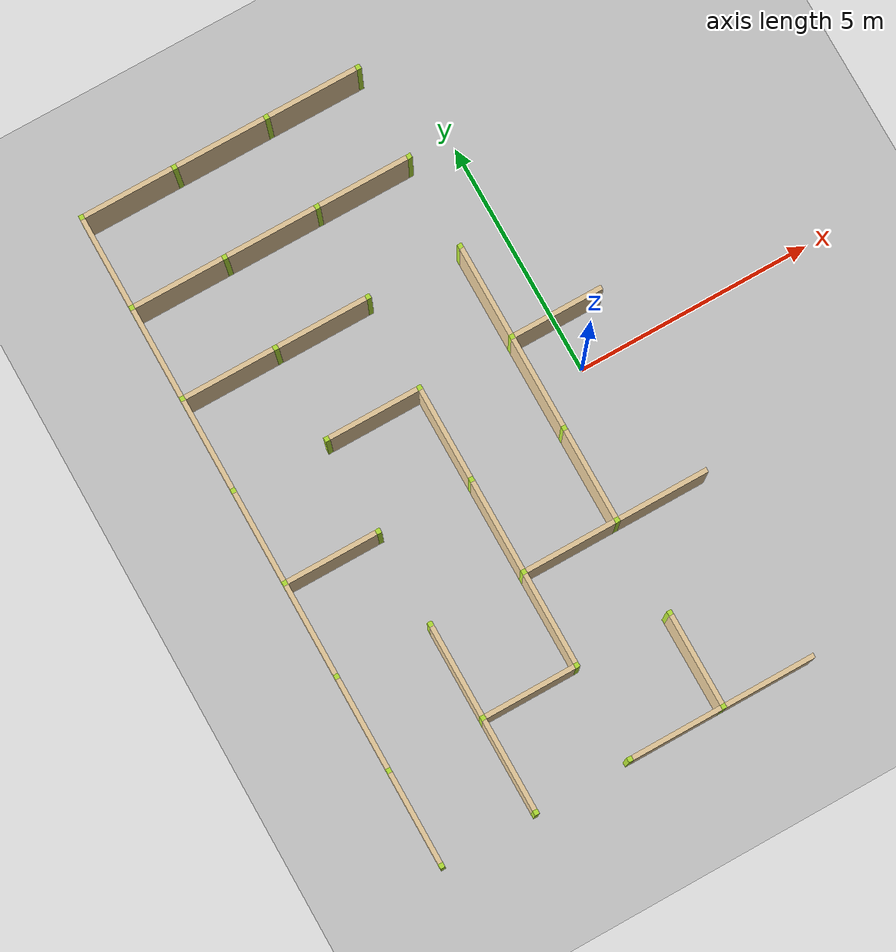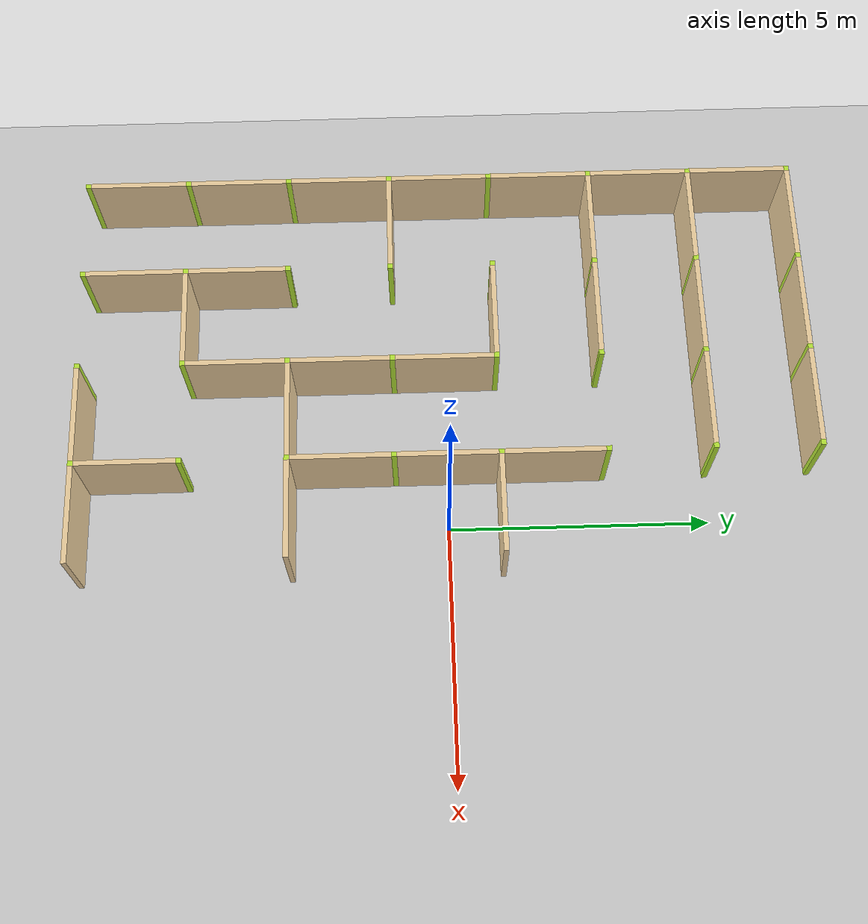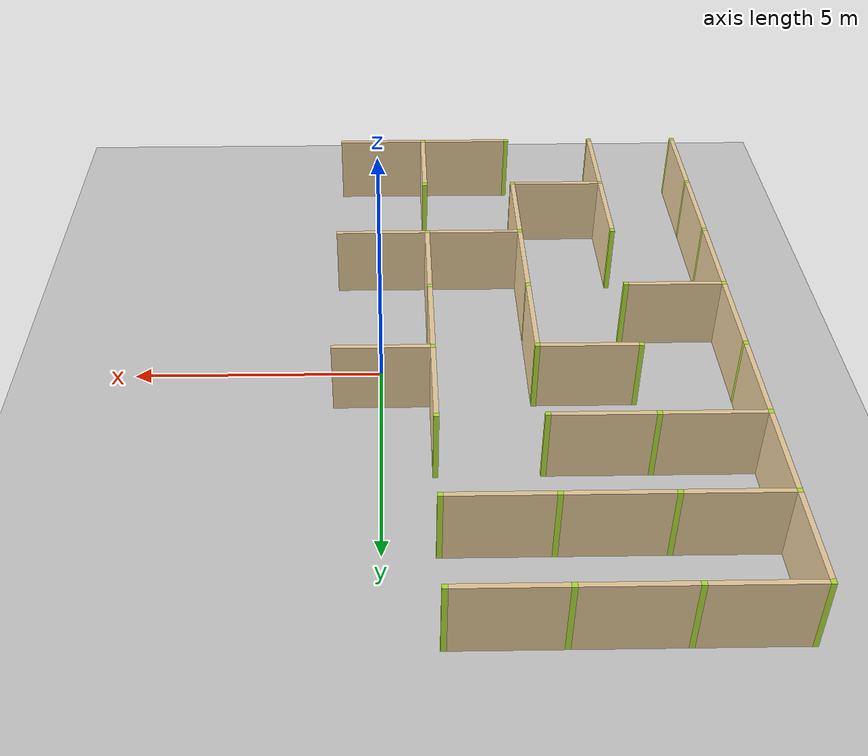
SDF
<sdf version="1.4">
 <world name="maze_world">
  <model name="ground">
   <static>true</static>
   <link name="ground_link">
    <collision name="collision1"><geometry><plane><normal>0 0 1</normal></plane></geometry></collision>
    <visual name="visual1"><geometry><plane><normal>0 0 1</normal><size>100 100</size></plane></geometry></visual>
   </link>
  </model>
  <model name="Untitled">
   <link name="Wall_0_0_h">
    <collision name="Wall_0_Collision">
     <geometry><box><size>1.9 0.1 1.5</size></box></geometry>
     <pose>0 0 0.75 0 -0 0</pose>
    </collision>
    <visual name="Wall_0_Visual">
     <pose>0 0 0.75 0 -0 0</pose>
     <geometry><box><size>1.9 0.1 1.5</size></box></geometry>
     <material>
      <script><uri>file://media/materials/scripts/gazebo.material</uri><name>Gazebo/Grey</name></script>
      <ambient>0.921569 0.807843 0.615686 1</ambient>
     </material>
     <meta><layer>0</layer></meta>
    </visual>
    <pose>-6.0 7 0 0 -0 0</pose>
    <sensor name="my_contact" type="contact">
     <contact><collision>box_collision</collision><topic>/rover_collision</topic></contact>
    </sensor>
   </link>
   <link name="Wall_0_0_v">
    <collision name="Wall_0_Collision">
     <geometry><box><size>1.9 0.1 1.5</size></box></geometry>
     <pose>0 0 0.75 0 -0 0</pose>
    </collision>
    <visual name="Wall_0_Visual">
     <pose>0 0 0.75 0 -0 0</pose>
     <geometry><box><size>1.9 0.1 1.5</size></box></geometry>
     <material>
      <script><uri>file://media/materials/scripts/gazebo.material</uri><name>Gazebo/Grey</name></script>
      <ambient>0.921569 0.807843 0.615686 1</ambient>
     </material>
     <meta><layer>0</layer></meta>
    </visual>
    <pose>-7 6.0 0 0 -0 1.5708</pose>
    <sensor name="my_contact" type="contact">
     <contact><collision>box_collision</collision><topic>/rover_collision</topic></contact>
    </sensor>
   </link>
   <link name="Joint_-7_7">
    <collision name="Wall_2_Collision">
     <geometry><box><size>0.1 0.1 1.5</size></box></geometry>
     <pose>0 0 0.75 0 -0 0</pose>
    </collision>
    <visual name="Wall_2_Visual">
     <pose>0 0 0.75 0 -0 0</pose>
     <geometry><box><size>0.1 0.1 1.5</size></box></geometry>
     <material>
      <script><uri>file://media/materials/scripts/gazebo.material</uri><name>Gazebo/Grey</name></script>
      <ambient>0.721569 0.907843 0.215686 1</ambient>
     </material>
     <meta><layer>0</layer></meta>
    </visual>
    <pose>-7 7 0 0 -0 0</pose>
    <sensor name="my_contact" type="contact">
     <contact><collision>box_collision</collision><topic>/rover_collision</topic></contact>
    </sensor>
   </link>
   <link name="Wall_1_0_h">
    <collision name="Wall_0_Collision">
     <geometry><box><size>1.9 0.1 1.5</size></box></geometry>
     <pose>0 0 0.75 0 -0 0</pose>
    </collision>
    <visual name="Wall_0_Visual">
     <pose>0 0 0.75 0 -0 0</pose>
     <geometry><box><size>1.9 0.1 1.5</size></box></geometry>
     <material>
      <script><uri>file://media/materials/scripts/gazebo.material</uri><name>Gazebo/Grey</name></script>
      <ambient>0.921569 0.807843 0.615686 1</ambient>
     </material>
     <meta><layer>0</layer></meta>
    </visual>
    <pose>-4.0 7 0 0 -0 0</pose>
    <sensor name="my_contact" type="contact">
     <contact><collision>box_collision</collision><topic>/rover_collision</topic></contact>
    </sensor>
   </link>
   <link name="Joint_-5_7">
    <collision name="Wall_2_Collision">
     <geometry><box><size>0.1 0.1 1.5</size></box></geometry>
     <pose>0 0 0.75 0 -0 0</pose>
    </collision>
    <visual name="Wall_2_Visual">
     <pose>0 0 0.75 0 -0 0</pose>
     <geometry><box><size>0.1 0.1 1.5</size></box></geometry>
     <material>
      <script><uri>file://media/materials/scripts/gazebo.material</uri><name>Gazebo/Grey</name></script>
      <ambient>0.721569 0.907843 0.215686 1</ambient>
     </material>
     <meta><layer>0</layer></meta>
    </visual>
    <pose>-5 7 0 0 -0 0</pose>
    <sensor name="my_contact" type="contact">
     <contact><collision>box_collision</collision><topic>/rover_collision</topic></contact>
    </sensor>
   </link>
   <link name="Wall_2_0_h">
    <collision name="Wall_0_Collision">
     <geometry><box><size>1.9 0.1 1.5</size></box></geometry>
     <pose>0 0 0.75 0 -0 0</pose>
    </collision>
    <visual name="Wall_0_Visual">
     <pose>0 0 0.75 0 -0 0</pose>
     <geometry><box><size>1.9 0.1 1.5</size></box></geometry>
     <material>
      <script><uri>file://media/materials/scripts/gazebo.material</uri><name>Gazebo/Grey</name></script>
      <ambient>0.921569 0.807843 0.615686 1</ambient>
     </material>
     <meta><layer>0</layer></meta>
    </visual>
    <pose>-2.0 7 0 0 -0 0</pose>
    <sensor name="my_contact" type="contact">
     <contact><collision>box_collision</collision><topic>/rover_collision</topic></contact>
    </sensor>
   </link>
   <link name="Joint_-3_7">
    <collision name="Wall_2_Collision">
     <geometry><box><size>0.1 0.1 1.5</size></box></geometry>
     <pose>0 0 0.75 0 -0 0</pose>
    </collision>
    <visual name="Wall_2_Visual">
     <pose>0 0 0.75 0 -0 0</pose>
     <geometry><box><size>0.1 0.1 1.5</size></box></geometry>
     <material>
      <script><uri>file://media/materials/scripts/gazebo.material</uri><name>Gazebo/Grey</name></script>
      <ambient>0.721569 0.907843 0.215686 1</ambient>
     </material>
     <meta><layer>0</layer></meta>
    </visual>
    <pose>-3 7 0 0 -0 0</pose>
    <sensor name="my_contact" type="contact">
     <contact><collision>box_collision</collision><topic>/rover_collision</topic></contact>
    </sensor>
   </link>
   <link name="Joint_-1_7">
    <collision name="Wall_2_Collision">
     <geometry><box><size>0.1 0.1 1.5</size></box></geometry>
     <pose>0 0 0.75 0 -0 0</pose>
    </collision>
    <visual name="Wall_2_Visual">
     <pose>0 0 0.75 0 -0 0</pose>
     <geometry><box><size>0.1 0.1 1.5</size></box></geometry>
     <material>
      <script><uri>file://media/materials/scripts/gazebo.material</uri><name>Gazebo/Grey</name></script>
      <ambient>0.721569 0.907843 0.215686 1</ambient>
     </material>
     <meta><layer>0</layer></meta>
    </visual>
    <pose>-1 7 0 0 -0 0</pose>
    <sensor name="my_contact" type="contact">
     <contact><collision>box_collision</collision><topic>/rover_collision</topic></contact>
    </sensor>
   </link>
   <link name="Wall_0_1_h">
    <collision name="Wall_0_Collision">
     <geometry><box><size>1.9 0.1 1.5</size></box></geometry>
     <pose>0 0 0.75 0 -0 0</pose>
    </collision>
    <visual name="Wall_0_Visual">
     <pose>0 0 0.75 0 -0 0</pose>
     <geometry><box><size>1.9 0.1 1.5</size></box></geometry>
     <material>
      <script><uri>file://media/materials/scripts/gazebo.material</uri><name>Gazebo/Grey</name></script>
      <ambient>0.921569 0.807843 0.615686 1</ambient>
     </material>
     <meta><layer>0</layer></meta>
    </visual>
    <pose>-6.0 5 0 0 -0 0</pose>
    <sensor name="my_contact" type="contact">
     <contact><collision>box_collision</collision><topic>/rover_collision</topic></contact>
    </sensor>
   </link>
   <link name="Wall_0_1_v">
    <collision name="Wall_0_Collision">
     <geometry><box><size>1.9 0.1 1.5</size></box></geometry>
     <pose>0 0 0.75 0 -0 0</pose>
    </collision>
    <visual name="Wall_0_Visual">
     <pose>0 0 0.75 0 -0 0</pose>
     <geometry><box><size>1.9 0.1 1.5</size></box></geometry>
     <material>
      <script><uri>file://media/materials/scripts/gazebo.material</uri><name>Gazebo/Grey</name></script>
      <ambient>0.921569 0.807843 0.615686 1</ambient>
     </material>
     <meta><layer>0</layer></meta>
    </visual>
    <pose>-7 4.0 0 0 -0 1.5708</pose>
    <sensor name="my_contact" type="contact">
     <contact><collision>box_collision</collision><topic>/rover_collision</topic></contact>
    </sensor>
   </link>
   <link name="Joint_-7_5">
    <collision name="Wall_2_Collision">
     <geometry><box><size>0.1 0.1 1.5</size></box></geometry>
     <pose>0 0 0.75 0 -0 0</pose>
    </collision>
    <visual name="Wall_2_Visual">
     <pose>0 0 0.75 0 -0 0</pose>
     <geometry><box><size>0.1 0.1 1.5</size></box></geometry>
     <material>
      <script><uri>file://media/materials/scripts/gazebo.material</uri><name>Gazebo/Grey</name></script>
      <ambient>0.721569 0.907843 0.215686 1</ambient>
     </material>
     <meta><layer>0</layer></meta>
    </visual>
    <pose>-7 5 0 0 -0 0</pose>
    <sensor name="my_contact" type="contact">
     <contact><collision>box_collision</collision><topic>/rover_collision</topic></contact>
    </sensor>
   </link>
   <link name="Wall_1_1_h">
    <collision name="Wall_0_Collision">
     <geometry><box><size>1.9 0.1 1.5</size></box></geometry>
     <pose>0 0 0.75 0 -0 0</pose>
    </collision>
    <visual name="Wall_0_Visual">
     <pose>0 0 0.75 0 -0 0</pose>
     <geometry><box><size>1.9 0.1 1.5</size></box></geometry>
     <material>
      <script><uri>file://media/materials/scripts/gazebo.material</uri><name>Gazebo/Grey</name></script>
      <ambient>0.921569 0.807843 0.615686 1</ambient>
     </material>
     <meta><layer>0</layer></meta>
    </visual>
    <pose>-4.0 5 0 0 -0 0</pose>
    <sensor name="my_contact" type="contact">
     <contact><collision>box_collision</collision><topic>/rover_collision</topic></contact>
    </sensor>
   </link>
   <link name="Joint_-5_5">
    <collision name="Wall_2_Collision">
     <geometry><box><size>0.1 0.1 1.5</size></box></geometry>
     <pose>0 0 0.75 0 -0 0</pose>
    </collision>
    <visual name="Wall_2_Visual">
     <pose>0 0 0.75 0 -0 0</pose>
     <geometry><box><size>0.1 0.1 1.5</size></box></geometry>
     <material>
      <script><uri>file://media/materials/scripts/gazebo.material</uri><name>Gazebo/Grey</name></script>
      <ambient>0.721569 0.907843 0.215686 1</ambient>
     </material>
     <meta><layer>0</layer></meta>
    </visual>
    <pose>-5 5 0 0 -0 0</pose>
    <sensor name="my_contact" type="contact">
     <contact><collision>box_collision</collision><topic>/rover_collision</topic></contact>
    </sensor>
   </link>
   <link name="Wall_2_1_h">
    <collision name="Wall_0_Collision">
     <geometry><box><size>1.9 0.1 1.5</size></box></geometry>
     <pose>0 0 0.75 0 -0 0</pose>
    </collision>
    <visual name="Wall_0_Visual">
     <pose>0 0 0.75 0 -0 0</pose>
     <geometry><box><size>1.9 0.1 1.5</size></box></geometry>
     <material>
      <script><uri>file://media/materials/scripts/gazebo.material</uri><name>Gazebo/Grey</name></script>
      <ambient>0.921569 0.807843 0.615686 1</ambient>
     </material>
     <meta><layer>0</layer></meta>
    </visual>
    <pose>-2.0 5 0 0 -0 0</pose>
    <sensor name="my_contact" type="contact">
     <contact><collision>box_collision</collision><topic>/rover_collision</topic></contact>
    </sensor>
   </link>
   <link name="Joint_-3_5">
    <collision name="Wall_2_Collision">
     <geometry><box><size>0.1 0.1 1.5</size></box></geometry>
     <pose>0 0 0.75 0 -0 0</pose>
    </collision>
    <visual name="Wall_2_Visual">
     <pose>0 0 0.75 0 -0 0</pose>
     <geometry><box><size>0.1 0.1 1.5</size></box></geometry>
     <material>
      <script><uri>file://media/materials/scripts/gazebo.material</uri><name>Gazebo/Grey</name></script>
      <ambient>0.721569 0.907843 0.215686 1</ambient>
     </material>
     <meta><layer>0</layer></meta>
    </visual>
    <pose>-3 5 0 0 -0 0</pose>
    <sensor name="my_contact" type="contact">
     <contact><collision>box_collision</collision><topic>/rover_collision</topic></contact>
    </sensor>
   </link>
   <link name="Joint_-1_5">
    <collision name="Wall_2_Collision">
     <geometry><box><size>0.1 0.1 1.5</size></box></geometry>
     <pose>0 0 0.75 0 -0 0</pose>
    </collision>
    <visual name="Wall_2_Visual">
     <pose>0 0 0.75 0 -0 0</pose>
     <geometry><box><size>0.1 0.1 1.5</size></box></geometry>
     <material>
      <script><uri>file://media/materials/scripts/gazebo.material</uri><name>Gazebo/Grey</name></script>
      <ambient>0.721569 0.907843 0.215686 1</ambient>
     </material>
     <meta><layer>0</layer></meta>
    </visual>
    <pose>-1 5 0 0 -0 0</pose>
    <sensor name="my_contact" type="contact">
     <contact><collision>box_collision</collision><topic>/rover_collision</topic></contact>
    </sensor>
   </link>
   <link name="Wall_0_2_h">
    <collision name="Wall_0_Collision">
     <geometry><box><size>1.9 0.1 1.5</size></box></geometry>
     <pose>0 0 0.75 0 -0 0</pose>
    </collision>
    <visual name="Wall_0_Visual">
     <pose>0 0 0.75 0 -0 0</pose>
     <geometry><box><size>1.9 0.1 1.5</size></box></geometry>
     <material>
      <script><uri>file://media/materials/scripts/gazebo.material</uri><name>Gazebo/Grey</name></script>
      <ambient>0.921569 0.807843 0.615686 1</ambient>
     </material>
     <meta><layer>0</layer></meta>
    </visual>
    <pose>-6.0 3 0 0 -0 0</pose>
    <sensor name="my_contact" type="contact">
     <contact><collision>box_collision</collision><topic>/rover_collision</topic></contact>
    </sensor>
   </link>
   <link name="Wall_0_2_v">
    <collision name="Wall_0_Collision">
     <geometry><box><size>1.9 0.1 1.5</size></box></geometry>
     <pose>0 0 0.75 0 -0 0</pose>
    </collision>
    <visual name="Wall_0_Visual">
     <pose>0 0 0.75 0 -0 0</pose>
     <geometry><box><size>1.9 0.1 1.5</size></box></geometry>
     <material>
      <script><uri>file://media/materials/scripts/gazebo.material</uri><name>Gazebo/Grey</name></script>
      <ambient>0.921569 0.807843 0.615686 1</ambient>
     </material>
     <meta><layer>0</layer></meta>
    </visual>
    <pose>-7 2.0 0 0 -0 1.5708</pose>
    <sensor name="my_contact" type="contact">
     <contact><collision>box_collision</collision><topic>/rover_collision</topic></contact>
    </sensor>
   </link>
   <link name="Joint_-7_3">
    <collision name="Wall_2_Collision">
     <geometry><box><size>0.1 0.1 1.5</size></box></geometry>
     <pose>0 0 0.75 0 -0 0</pose>
    </collision>
    <visual name="Wall_2_Visual">
     <pose>0 0 0.75 0 -0 0</pose>
     <geometry><box><size>0.1 0.1 1.5</size></box></geometry>
     <material>
      <script><uri>file://media/materials/scripts/gazebo.material</uri><name>Gazebo/Grey</name></script>
      <ambient>0.721569 0.907843 0.215686 1</ambient>
     </material>
     <meta><layer>0</layer></meta>
    </visual>
    <pose>-7 3 0 0 -0 0</pose>
    <sensor name="my_contact" type="contact">
     <contact><collision>box_collision</collision><topic>/rover_collision</topic></contact>
    </sensor>
   </link>
   <link name="Wall_1_2_h">
    <collision name="Wall_0_Collision">
     <geometry><box><size>1.9 0.1 1.5</size></box></geometry>
     <pose>0 0 0.75 0 -0 0</pose>
    </collision>
    <visual name="Wall_0_Visual">
     <pose>0 0 0.75 0 -0 0</pose>
     <geometry><box><size>1.9 0.1 1.5</size></box></geometry>
     <material>
      <script><uri>file://media/materials/scripts/gazebo.material</uri><name>Gazebo/Grey</name></script>
      <ambient>0.921569 0.807843 0.615686 1</ambient>
     </material>
     <meta><layer>0</layer></meta>
    </visual>
    <pose>-4.0 3 0 0 -0 0</pose>
    <sensor name="my_contact" type="contact">
     <contact><collision>box_collision</collision><topic>/rover_collision</topic></contact>
    </sensor>
   </link>
   <link name="Joint_-5_3">
    <collision name="Wall_2_Collision">
     <geometry><box><size>0.1 0.1 1.5</size></box></geometry>
     <pose>0 0 0.75 0 -0 0</pose>
    </collision>
    <visual name="Wall_2_Visual">
     <pose>0 0 0.75 0 -0 0</pose>
     <geometry><box><size>0.1 0.1 1.5</size></box></geometry>
     <material>
      <script><uri>file://media/materials/scripts/gazebo.material</uri><name>Gazebo/Grey</name></script>
      <ambient>0.721569 0.907843 0.215686 1</ambient>
     </material>
     <meta><layer>0</layer></meta>
    </visual>
    <pose>-5 3 0 0 -0 0</pose>
    <sensor name="my_contact" type="contact">
     <contact><collision>box_collision</collision><topic>/rover_collision</topic></contact>
    </sensor>
   </link>
   <link name="Joint_-3_3">
    <collision name="Wall_2_Collision">
     <geometry><box><size>0.1 0.1 1.5</size></box></geometry>
     <pose>0 0 0.75 0 -0 0</pose>
    </collision>
    <visual name="Wall_2_Visual">
     <pose>0 0 0.75 0 -0 0</pose>
     <geometry><box><size>0.1 0.1 1.5</size></box></geometry>
     <material>
      <script><uri>file://media/materials/scripts/gazebo.material</uri><name>Gazebo/Grey</name></script>
      <ambient>0.721569 0.907843 0.215686 1</ambient>
     </material>
     <meta><layer>0</layer></meta>
    </visual>
    <pose>-3 3 0 0 -0 0</pose>
    <sensor name="my_contact" type="contact">
     <contact><collision>box_collision</collision><topic>/rover_collision</topic></contact>
    </sensor>
   </link>
   <link name="Wall_3_2_v">
    <collision name="Wall_0_Collision">
     <geometry><box><size>1.9 0.1 1.5</size></box></geometry>
     <pose>0 0 0.75 0 -0 0</pose>
    </collision>
    <visual name="Wall_0_Visual">
     <pose>0 0 0.75 0 -0 0</pose>
     <geometry><box><size>1.9 0.1 1.5</size></box></geometry>
     <material>
      <script><uri>file://media/materials/scripts/gazebo.material</uri><name>Gazebo/Grey</name></script>
      <ambient>0.921569 0.807843 0.615686 1</ambient>
     </material>
     <meta><layer>0</layer></meta>
    </visual>
    <pose>-1 2.0 0 0 -0 1.5708</pose>
    <sensor name="my_contact" type="contact">
     <contact><collision>box_collision</collision><topic>/rover_collision</topic></contact>
    </sensor>
   </link>
   <link name="Joint_-1_3">
    <collision name="Wall_2_Collision">
     <geometry><box><size>0.1 0.1 1.5</size></box></geometry>
     <pose>0 0 0.75 0 -0 0</pose>
    </collision>
    <visual name="Wall_2_Visual">
     <pose>0 0 0.75 0 -0 0</pose>
     <geometry><box><size>0.1 0.1 1.5</size></box></geometry>
     <material>
      <script><uri>file://media/materials/scripts/gazebo.material</uri><name>Gazebo/Grey</name></script>
      <ambient>0.721569 0.907843 0.215686 1</ambient>
     </material>
     <meta><layer>0</layer></meta>
    </visual>
    <pose>-1 3 0 0 -0 0</pose>
    <sensor name="my_contact" type="contact">
     <contact><collision>box_collision</collision><topic>/rover_collision</topic></contact>
    </sensor>
   </link>
   <link name="Wall_0_3_v">
    <collision name="Wall_0_Collision">
     <geometry><box><size>1.9 0.1 1.5</size></box></geometry>
     <pose>0 0 0.75 0 -0 0</pose>
    </collision>
    <visual name="Wall_0_Visual">
     <pose>0 0 0.75 0 -0 0</pose>
     <geometry><box><size>1.9 0.1 1.5</size></box></geometry>
     <material>
      <script><uri>file://media/materials/scripts/gazebo.material</uri><name>Gazebo/Grey</name></script>
      <ambient>0.921569 0.807843 0.615686 1</ambient>
     </material>
     <meta><layer>0</layer></meta>
    </visual>
    <pose>-7 -0.0 0 0 -0 1.5708</pose>
    <sensor name="my_contact" type="contact">
     <contact><collision>box_collision</collision><topic>/rover_collision</topic></contact>
    </sensor>
   </link>
   <link name="Joint_-7_1">
    <collision name="Wall_2_Collision">
     <geometry><box><size>0.1 0.1 1.5</size></box></geometry>
     <pose>0 0 0.75 0 -0 0</pose>
    </collision>
    <visual name="Wall_2_Visual">
     <pose>0 0 0.75 0 -0 0</pose>
     <geometry><box><size>0.1 0.1 1.5</size></box></geometry>
     <material>
      <script><uri>file://media/materials/scripts/gazebo.material</uri><name>Gazebo/Grey</name></script>
      <ambient>0.721569 0.907843 0.215686 1</ambient>
     </material>
     <meta><layer>0</layer></meta>
    </visual>
    <pose>-7 1 0 0 -0 0</pose>
    <sensor name="my_contact" type="contact">
     <contact><collision>box_collision</collision><topic>/rover_collision</topic></contact>
    </sensor>
   </link>
   <link name="Wall_1_3_h">
    <collision name="Wall_0_Collision">
     <geometry><box><size>1.9 0.1 1.5</size></box></geometry>
     <pose>0 0 0.75 0 -0 0</pose>
    </collision>
    <visual name="Wall_0_Visual">
     <pose>0 0 0.75 0 -0 0</pose>
     <geometry><box><size>1.9 0.1 1.5</size></box></geometry>
     <material>
      <script><uri>file://media/materials/scripts/gazebo.material</uri><name>Gazebo/Grey</name></script>
      <ambient>0.921569 0.807843 0.615686 1</ambient>
     </material>
     <meta><layer>0</layer></meta>
    </visual>
    <pose>-4.0 1 0 0 -0 0</pose>
    <sensor name="my_contact" type="contact">
     <contact><collision>box_collision</collision><topic>/rover_collision</topic></contact>
    </sensor>
   </link>
   <link name="Joint_-5_1">
    <collision name="Wall_2_Collision">
     <geometry><box><size>0.1 0.1 1.5</size></box></geometry>
     <pose>0 0 0.75 0 -0 0</pose>
    </collision>
    <visual name="Wall_2_Visual">
     <pose>0 0 0.75 0 -0 0</pose>
     <geometry><box><size>0.1 0.1 1.5</size></box></geometry>
     <material>
      <script><uri>file://media/materials/scripts/gazebo.material</uri><name>Gazebo/Grey</name></script>
      <ambient>0.721569 0.907843 0.215686 1</ambient>
     </material>
     <meta><layer>0</layer></meta>
    </visual>
    <pose>-5 1 0 0 -0 0</pose>
    <sensor name="my_contact" type="contact">
     <contact><collision>box_collision</collision><topic>/rover_collision</topic></contact>
    </sensor>
   </link>
   <link name="Wall_2_3_v">
    <collision name="Wall_0_Collision">
     <geometry><box><size>1.9 0.1 1.5</size></box></geometry>
     <pose>0 0 0.75 0 -0 0</pose>
    </collision>
    <visual name="Wall_0_Visual">
     <pose>0 0 0.75 0 -0 0</pose>
     <geometry><box><size>1.9 0.1 1.5</size></box></geometry>
     <material>
      <script><uri>file://media/materials/scripts/gazebo.material</uri><name>Gazebo/Grey</name></script>
      <ambient>0.921569 0.807843 0.615686 1</ambient>
     </material>
     <meta><layer>0</layer></meta>
    </visual>
    <pose>-3 -0.0 0 0 -0 1.5708</pose>
    <sensor name="my_contact" type="contact">
     <contact><collision>box_collision</collision><topic>/rover_collision</topic></contact>
    </sensor>
   </link>
   <link name="Joint_-3_1">
    <collision name="Wall_2_Collision">
     <geometry><box><size>0.1 0.1 1.5</size></box></geometry>
     <pose>0 0 0.75 0 -0 0</pose>
    </collision>
    <visual name="Wall_2_Visual">
     <pose>0 0 0.75 0 -0 0</pose>
     <geometry><box><size>0.1 0.1 1.5</size></box></geometry>
     <material>
      <script><uri>file://media/materials/scripts/gazebo.material</uri><name>Gazebo/Grey</name></script>
      <ambient>0.721569 0.907843 0.215686 1</ambient>
     </material>
     <meta><layer>0</layer></meta>
    </visual>
    <pose>-3 1 0 0 -0 0</pose>
    <sensor name="my_contact" type="contact">
     <contact><collision>box_collision</collision><topic>/rover_collision</topic></contact>
    </sensor>
   </link>
   <link name="Wall_3_3_h">
    <collision name="Wall_0_Collision">
     <geometry><box><size>1.9 0.1 1.5</size></box></geometry>
     <pose>0 0 0.75 0 -0 0</pose>
    </collision>
    <visual name="Wall_0_Visual">
     <pose>0 0 0.75 0 -0 0</pose>
     <geometry><box><size>1.9 0.1 1.5</size></box></geometry>
     <material>
      <script><uri>file://media/materials/scripts/gazebo.material</uri><name>Gazebo/Grey</name></script>
      <ambient>0.921569 0.807843 0.615686 1</ambient>
     </material>
     <meta><layer>0</layer></meta>
    </visual>
    <pose>0.0 1 0 0 -0 0</pose>
    <sensor name="my_contact" type="contact">
     <contact><collision>box_collision</collision><topic>/rover_collision</topic></contact>
    </sensor>
   </link>
   <link name="Wall_3_3_v">
    <collision name="Wall_0_Collision">
     <geometry><box><size>1.9 0.1 1.5</size></box></geometry>
     <pose>0 0 0.75 0 -0 0</pose>
    </collision>
    <visual name="Wall_0_Visual">
     <pose>0 0 0.75 0 -0 0</pose>
     <geometry><box><size>1.9 0.1 1.5</size></box></geometry>
     <material>
      <script><uri>file://media/materials/scripts/gazebo.material</uri><name>Gazebo/Grey</name></script>
      <ambient>0.921569 0.807843 0.615686 1</ambient>
     </material>
     <meta><layer>0</layer></meta>
    </visual>
    <pose>-1 -0.0 0 0 -0 1.5708</pose>
    <sensor name="my_contact" type="contact">
     <contact><collision>box_collision</collision><topic>/rover_collision</topic></contact>
    </sensor>
   </link>
   <link name="Joint_-1_1">
    <collision name="Wall_2_Collision">
     <geometry><box><size>0.1 0.1 1.5</size></box></geometry>
     <pose>0 0 0.75 0 -0 0</pose>
    </collision>
    <visual name="Wall_2_Visual">
     <pose>0 0 0.75 0 -0 0</pose>
     <geometry><box><size>0.1 0.1 1.5</size></box></geometry>
     <material>
      <script><uri>file://media/materials/scripts/gazebo.material</uri><name>Gazebo/Grey</name></script>
      <ambient>0.721569 0.907843 0.215686 1</ambient>
     </material>
     <meta><layer>0</layer></meta>
    </visual>
    <pose>-1 1 0 0 -0 0</pose>
    <sensor name="my_contact" type="contact">
     <contact><collision>box_collision</collision><topic>/rover_collision</topic></contact>
    </sensor>
   </link>
   <link name="Wall_0_4_h">
    <collision name="Wall_0_Collision">
     <geometry><box><size>1.9 0.1 1.5</size></box></geometry>
     <pose>0 0 0.75 0 -0 0</pose>
    </collision>
    <visual name="Wall_0_Visual">
     <pose>0 0 0.75 0 -0 0</pose>
     <geometry><box><size>1.9 0.1 1.5</size></box></geometry>
     <material>
      <script><uri>file://media/materials/scripts/gazebo.material</uri><name>Gazebo/Grey</name></script>
      <ambient>0.921569 0.807843 0.615686 1</ambient>
     </material>
     <meta><layer>0</layer></meta>
    </visual>
    <pose>-6.0 -1 0 0 -0 0</pose>
    <sensor name="my_contact" type="contact">
     <contact><collision>box_collision</collision><topic>/rover_collision</topic></contact>
    </sensor>
   </link>
   <link name="Wall_0_4_v">
    <collision name="Wall_0_Collision">
     <geometry><box><size>1.9 0.1 1.5</size></box></geometry>
     <pose>0 0 0.75 0 -0 0</pose>
    </collision>
    <visual name="Wall_0_Visual">
     <pose>0 0 0.75 0 -0 0</pose>
     <geometry><box><size>1.9 0.1 1.5</size></box></geometry>
     <material>
      <script><uri>file://media/materials/scripts/gazebo.material</uri><name>Gazebo/Grey</name></script>
      <ambient>0.921569 0.807843 0.615686 1</ambient>
     </material>
     <meta><layer>0</layer></meta>
    </visual>
    <pose>-7 -2.0 0 0 -0 1.5708</pose>
    <sensor name="my_contact" type="contact">
     <contact><collision>box_collision</collision><topic>/rover_collision</topic></contact>
    </sensor>
   </link>
   <link name="Joint_-7_-1">
    <collision name="Wall_2_Collision">
     <geometry><box><size>0.1 0.1 1.5</size></box></geometry>
     <pose>0 0 0.75 0 -0 0</pose>
    </collision>
    <visual name="Wall_2_Visual">
     <pose>0 0 0.75 0 -0 0</pose>
     <geometry><box><size>0.1 0.1 1.5</size></box></geometry>
     <material>
      <script><uri>file://media/materials/scripts/gazebo.material</uri><name>Gazebo/Grey</name></script>
      <ambient>0.721569 0.907843 0.215686 1</ambient>
     </material>
     <meta><layer>0</layer></meta>
    </visual>
    <pose>-7 -1 0 0 -0 0</pose>
    <sensor name="my_contact" type="contact">
     <contact><collision>box_collision</collision><topic>/rover_collision</topic></contact>
    </sensor>
   </link>
   <link name="Joint_-5_-1">
    <collision name="Wall_2_Collision">
     <geometry><box><size>0.1 0.1 1.5</size></box></geometry>
     <pose>0 0 0.75 0 -0 0</pose>
    </collision>
    <visual name="Wall_2_Visual">
     <pose>0 0 0.75 0 -0 0</pose>
     <geometry><box><size>0.1 0.1 1.5</size></box></geometry>
     <material>
      <script><uri>file://media/materials/scripts/gazebo.material</uri><name>Gazebo/Grey</name></script>
      <ambient>0.721569 0.907843 0.215686 1</ambient>
     </material>
     <meta><layer>0</layer></meta>
    </visual>
    <pose>-5 -1 0 0 -0 0</pose>
    <sensor name="my_contact" type="contact">
     <contact><collision>box_collision</collision><topic>/rover_collision</topic></contact>
    </sensor>
   </link>
   <link name="Wall_2_4_v">
    <collision name="Wall_0_Collision">
     <geometry><box><size>1.9 0.1 1.5</size></box></geometry>
     <pose>0 0 0.75 0 -0 0</pose>
    </collision>
    <visual name="Wall_0_Visual">
     <pose>0 0 0.75 0 -0 0</pose>
     <geometry><box><size>1.9 0.1 1.5</size></box></geometry>
     <material>
      <script><uri>file://media/materials/scripts/gazebo.material</uri><name>Gazebo/Grey</name></script>
      <ambient>0.921569 0.807843 0.615686 1</ambient>
     </material>
     <meta><layer>0</layer></meta>
    </visual>
    <pose>-3 -2.0 0 0 -0 1.5708</pose>
    <sensor name="my_contact" type="contact">
     <contact><collision>box_collision</collision><topic>/rover_collision</topic></contact>
    </sensor>
   </link>
   <link name="Joint_-3_-1">
    <collision name="Wall_2_Collision">
     <geometry><box><size>0.1 0.1 1.5</size></box></geometry>
     <pose>0 0 0.75 0 -0 0</pose>
    </collision>
    <visual name="Wall_2_Visual">
     <pose>0 0 0.75 0 -0 0</pose>
     <geometry><box><size>0.1 0.1 1.5</size></box></geometry>
     <material>
      <script><uri>file://media/materials/scripts/gazebo.material</uri><name>Gazebo/Grey</name></script>
      <ambient>0.721569 0.907843 0.215686 1</ambient>
     </material>
     <meta><layer>0</layer></meta>
    </visual>
    <pose>-3 -1 0 0 -0 0</pose>
    <sensor name="my_contact" type="contact">
     <contact><collision>box_collision</collision><topic>/rover_collision</topic></contact>
    </sensor>
   </link>
   <link name="Wall_3_4_v">
    <collision name="Wall_0_Collision">
     <geometry><box><size>1.9 0.1 1.5</size></box></geometry>
     <pose>0 0 0.75 0 -0 0</pose>
    </collision>
    <visual name="Wall_0_Visual">
     <pose>0 0 0.75 0 -0 0</pose>
     <geometry><box><size>1.9 0.1 1.5</size></box></geometry>
     <material>
      <script><uri>file://media/materials/scripts/gazebo.material</uri><name>Gazebo/Grey</name></script>
      <ambient>0.921569 0.807843 0.615686 1</ambient>
     </material>
     <meta><layer>0</layer></meta>
    </visual>
    <pose>-1 -2.0 0 0 -0 1.5708</pose>
    <sensor name="my_contact" type="contact">
     <contact><collision>box_collision</collision><topic>/rover_collision</topic></contact>
    </sensor>
   </link>
   <link name="Joint_-1_-1">
    <collision name="Wall_2_Collision">
     <geometry><box><size>0.1 0.1 1.5</size></box></geometry>
     <pose>0 0 0.75 0 -0 0</pose>
    </collision>
    <visual name="Wall_2_Visual">
     <pose>0 0 0.75 0 -0 0</pose>
     <geometry><box><size>0.1 0.1 1.5</size></box></geometry>
     <material>
      <script><uri>file://media/materials/scripts/gazebo.material</uri><name>Gazebo/Grey</name></script>
      <ambient>0.721569 0.907843 0.215686 1</ambient>
     </material>
     <meta><layer>0</layer></meta>
    </visual>
    <pose>-1 -1 0 0 -0 0</pose>
    <sensor name="my_contact" type="contact">
     <contact><collision>box_collision</collision><topic>/rover_collision</topic></contact>
    </sensor>
   </link>
   <link name="Wall_0_5_v">
    <collision name="Wall_0_Collision">
     <geometry><box><size>1.9 0.1 1.5</size></box></geometry>
     <pose>0 0 0.75 0 -0 0</pose>
    </collision>
    <visual name="Wall_0_Visual">
     <pose>0 0 0.75 0 -0 0</pose>
     <geometry><box><size>1.9 0.1 1.5</size></box></geometry>
     <material>
      <script><uri>file://media/materials/scripts/gazebo.material</uri><name>Gazebo/Grey</name></script>
      <ambient>0.921569 0.807843 0.615686 1</ambient>
     </material>
     <meta><layer>0</layer></meta>
    </visual>
    <pose>-7 -4.0 0 0 -0 1.5708</pose>
    <sensor name="my_contact" type="contact">
     <contact><collision>box_collision</collision><topic>/rover_collision</topic></contact>
    </sensor>
   </link>
   <link name="Joint_-7_-3">
    <collision name="Wall_2_Collision">
     <geometry><box><size>0.1 0.1 1.5</size></box></geometry>
     <pose>0 0 0.75 0 -0 0</pose>
    </collision>
    <visual name="Wall_2_Visual">
     <pose>0 0 0.75 0 -0 0</pose>
     <geometry><box><size>0.1 0.1 1.5</size></box></geometry>
     <material>
      <script><uri>file://media/materials/scripts/gazebo.material</uri><name>Gazebo/Grey</name></script>
      <ambient>0.721569 0.907843 0.215686 1</ambient>
     </material>
     <meta><layer>0</layer></meta>
    </visual>
    <pose>-7 -3 0 0 -0 0</pose>
    <sensor name="my_contact" type="contact">
     <contact><collision>box_collision</collision><topic>/rover_collision</topic></contact>
    </sensor>
   </link>
   <link name="Wall_1_5_v">
    <collision name="Wall_0_Collision">
     <geometry><box><size>1.9 0.1 1.5</size></box></geometry>
     <pose>0 0 0.75 0 -0 0</pose>
    </collision>
    <visual name="Wall_0_Visual">
     <pose>0 0 0.75 0 -0 0</pose>
     <geometry><box><size>1.9 0.1 1.5</size></box></geometry>
     <material>
      <script><uri>file://media/materials/scripts/gazebo.material</uri><name>Gazebo/Grey</name></script>
      <ambient>0.921569 0.807843 0.615686 1</ambient>
     </material>
     <meta><layer>0</layer></meta>
    </visual>
    <pose>-5 -4.0 0 0 -0 1.5708</pose>
    <sensor name="my_contact" type="contact">
     <contact><collision>box_collision</collision><topic>/rover_collision</topic></contact>
    </sensor>
   </link>
   <link name="Joint_-5_-3">
    <collision name="Wall_2_Collision">
     <geometry><box><size>0.1 0.1 1.5</size></box></geometry>
     <pose>0 0 0.75 0 -0 0</pose>
    </collision>
    <visual name="Wall_2_Visual">
     <pose>0 0 0.75 0 -0 0</pose>
     <geometry><box><size>0.1 0.1 1.5</size></box></geometry>
     <material>
      <script><uri>file://media/materials/scripts/gazebo.material</uri><name>Gazebo/Grey</name></script>
      <ambient>0.721569 0.907843 0.215686 1</ambient>
     </material>
     <meta><layer>0</layer></meta>
    </visual>
    <pose>-5 -3 0 0 -0 0</pose>
    <sensor name="my_contact" type="contact">
     <contact><collision>box_collision</collision><topic>/rover_collision</topic></contact>
    </sensor>
   </link>
   <link name="Wall_2_5_h">
    <collision name="Wall_0_Collision">
     <geometry><box><size>1.9 0.1 1.5</size></box></geometry>
     <pose>0 0 0.75 0 -0 0</pose>
    </collision>
    <visual name="Wall_0_Visual">
     <pose>0 0 0.75 0 -0 0</pose>
     <geometry><box><size>1.9 0.1 1.5</size></box></geometry>
     <material>
      <script><uri>file://media/materials/scripts/gazebo.material</uri><name>Gazebo/Grey</name></script>
      <ambient>0.921569 0.807843 0.615686 1</ambient>
     </material>
     <meta><layer>0</layer></meta>
    </visual>
    <pose>-2.0 -3 0 0 -0 0</pose>
    <sensor name="my_contact" type="contact">
     <contact><collision>box_collision</collision><topic>/rover_collision</topic></contact>
    </sensor>
   </link>
   <link name="Wall_2_5_v">
    <collision name="Wall_0_Collision">
     <geometry><box><size>1.9 0.1 1.5</size></box></geometry>
     <pose>0 0 0.75 0 -0 0</pose>
    </collision>
    <visual name="Wall_0_Visual">
     <pose>0 0 0.75 0 -0 0</pose>
     <geometry><box><size>1.9 0.1 1.5</size></box></geometry>
     <material>
      <script><uri>file://media/materials/scripts/gazebo.material</uri><name>Gazebo/Grey</name></script>
      <ambient>0.921569 0.807843 0.615686 1</ambient>
     </material>
     <meta><layer>0</layer></meta>
    </visual>
    <pose>-3 -4.0 0 0 -0 1.5708</pose>
    <sensor name="my_contact" type="contact">
     <contact><collision>box_collision</collision><topic>/rover_collision</topic></contact>
    </sensor>
   </link>
   <link name="Joint_-3_-3">
    <collision name="Wall_2_Collision">
     <geometry><box><size>0.1 0.1 1.5</size></box></geometry>
     <pose>0 0 0.75 0 -0 0</pose>
    </collision>
    <visual name="Wall_2_Visual">
     <pose>0 0 0.75 0 -0 0</pose>
     <geometry><box><size>0.1 0.1 1.5</size></box></geometry>
     <material>
      <script><uri>file://media/materials/scripts/gazebo.material</uri><name>Gazebo/Grey</name></script>
      <ambient>0.721569 0.907843 0.215686 1</ambient>
     </material>
     <meta><layer>0</layer></meta>
    </visual>
    <pose>-3 -3 0 0 -0 0</pose>
    <sensor name="my_contact" type="contact">
     <contact><collision>box_collision</collision><topic>/rover_collision</topic></contact>
    </sensor>
   </link>
   <link name="Wall_3_5_h">
    <collision name="Wall_0_Collision">
     <geometry><box><size>1.9 0.1 1.5</size></box></geometry>
     <pose>0 0 0.75 0 -0 0</pose>
    </collision>
    <visual name="Wall_0_Visual">
     <pose>0 0 0.75 0 -0 0</pose>
     <geometry><box><size>1.9 0.1 1.5</size></box></geometry>
     <material>
      <script><uri>file://media/materials/scripts/gazebo.material</uri><name>Gazebo/Grey</name></script>
      <ambient>0.921569 0.807843 0.615686 1</ambient>
     </material>
     <meta><layer>0</layer></meta>
    </visual>
    <pose>0.0 -3 0 0 -0 0</pose>
    <sensor name="my_contact" type="contact">
     <contact><collision>box_collision</collision><topic>/rover_collision</topic></contact>
    </sensor>
   </link>
   <link name="Joint_-1_-3">
    <collision name="Wall_2_Collision">
     <geometry><box><size>0.1 0.1 1.5</size></box></geometry>
     <pose>0 0 0.75 0 -0 0</pose>
    </collision>
    <visual name="Wall_2_Visual">
     <pose>0 0 0.75 0 -0 0</pose>
     <geometry><box><size>0.1 0.1 1.5</size></box></geometry>
     <material>
      <script><uri>file://media/materials/scripts/gazebo.material</uri><name>Gazebo/Grey</name></script>
      <ambient>0.721569 0.907843 0.215686 1</ambient>
     </material>
     <meta><layer>0</layer></meta>
    </visual>
    <pose>-1 -3 0 0 -0 0</pose>
    <sensor name="my_contact" type="contact">
     <contact><collision>box_collision</collision><topic>/rover_collision</topic></contact>
    </sensor>
   </link>
   <link name="Wall_0_6_v">
    <collision name="Wall_0_Collision">
     <geometry><box><size>1.9 0.1 1.5</size></box></geometry>
     <pose>0 0 0.75 0 -0 0</pose>
    </collision>
    <visual name="Wall_0_Visual">
     <pose>0 0 0.75 0 -0 0</pose>
     <geometry><box><size>1.9 0.1 1.5</size></box></geometry>
     <material>
      <script><uri>file://media/materials/scripts/gazebo.material</uri><name>Gazebo/Grey</name></script>
      <ambient>0.921569 0.807843 0.615686 1</ambient>
     </material>
     <meta><layer>0</layer></meta>
    </visual>
    <pose>-7 -6.0 0 0 -0 1.5708</pose>
    <sensor name="my_contact" type="contact">
     <contact><collision>box_collision</collision><topic>/rover_collision</topic></contact>
    </sensor>
   </link>
   <link name="Joint_-7_-5">
    <collision name="Wall_2_Collision">
     <geometry><box><size>0.1 0.1 1.5</size></box></geometry>
     <pose>0 0 0.75 0 -0 0</pose>
    </collision>
    <visual name="Wall_2_Visual">
     <pose>0 0 0.75 0 -0 0</pose>
     <geometry><box><size>0.1 0.1 1.5</size></box></geometry>
     <material>
      <script><uri>file://media/materials/scripts/gazebo.material</uri><name>Gazebo/Grey</name></script>
      <ambient>0.721569 0.907843 0.215686 1</ambient>
     </material>
     <meta><layer>0</layer></meta>
    </visual>
    <pose>-7 -5 0 0 -0 0</pose>
    <sensor name="my_contact" type="contact">
     <contact><collision>box_collision</collision><topic>/rover_collision</topic></contact>
    </sensor>
   </link>
   <link name="Wall_1_6_h">
    <collision name="Wall_0_Collision">
     <geometry><box><size>1.9 0.1 1.5</size></box></geometry>
     <pose>0 0 0.75 0 -0 0</pose>
    </collision>
    <visual name="Wall_0_Visual">
     <pose>0 0 0.75 0 -0 0</pose>
     <geometry><box><size>1.9 0.1 1.5</size></box></geometry>
     <material>
      <script><uri>file://media/materials/scripts/gazebo.material</uri><name>Gazebo/Grey</name></script>
      <ambient>0.921569 0.807843 0.615686 1</ambient>
     </material>
     <meta><layer>0</layer></meta>
    </visual>
    <pose>-4.0 -5 0 0 -0 0</pose>
    <sensor name="my_contact" type="contact">
     <contact><collision>box_collision</collision><topic>/rover_collision</topic></contact>
    </sensor>
   </link>
   <link name="Wall_1_6_v">
    <collision name="Wall_0_Collision">
     <geometry><box><size>1.9 0.1 1.5</size></box></geometry>
     <pose>0 0 0.75 0 -0 0</pose>
    </collision>
    <visual name="Wall_0_Visual">
     <pose>0 0 0.75 0 -0 0</pose>
     <geometry><box><size>1.9 0.1 1.5</size></box></geometry>
     <material>
      <script><uri>file://media/materials/scripts/gazebo.material</uri><name>Gazebo/Grey</name></script>
      <ambient>0.921569 0.807843 0.615686 1</ambient>
     </material>
     <meta><layer>0</layer></meta>
    </visual>
    <pose>-5 -6.0 0 0 -0 1.5708</pose>
    <sensor name="my_contact" type="contact">
     <contact><collision>box_collision</collision><topic>/rover_collision</topic></contact>
    </sensor>
   </link>
   <link name="Joint_-5_-5">
    <collision name="Wall_2_Collision">
     <geometry><box><size>0.1 0.1 1.5</size></box></geometry>
     <pose>0 0 0.75 0 -0 0</pose>
    </collision>
    <visual name="Wall_2_Visual">
     <pose>0 0 0.75 0 -0 0</pose>
     <geometry><box><size>0.1 0.1 1.5</size></box></geometry>
     <material>
      <script><uri>file://media/materials/scripts/gazebo.material</uri><name>Gazebo/Grey</name></script>
      <ambient>0.721569 0.907843 0.215686 1</ambient>
     </material>
     <meta><layer>0</layer></meta>
    </visual>
    <pose>-5 -5 0 0 -0 0</pose>
    <sensor name="my_contact" type="contact">
     <contact><collision>box_collision</collision><topic>/rover_collision</topic></contact>
    </sensor>
   </link>
   <link name="Joint_-3_-5">
    <collision name="Wall_2_Collision">
     <geometry><box><size>0.1 0.1 1.5</size></box></geometry>
     <pose>0 0 0.75 0 -0 0</pose>
    </collision>
    <visual name="Wall_2_Visual">
     <pose>0 0 0.75 0 -0 0</pose>
     <geometry><box><size>0.1 0.1 1.5</size></box></geometry>
     <material>
      <script><uri>file://media/materials/scripts/gazebo.material</uri><name>Gazebo/Grey</name></script>
      <ambient>0.721569 0.907843 0.215686 1</ambient>
     </material>
     <meta><layer>0</layer></meta>
    </visual>
    <pose>-3 -5 0 0 -0 0</pose>
    <sensor name="my_contact" type="contact">
     <contact><collision>box_collision</collision><topic>/rover_collision</topic></contact>
    </sensor>
   </link>
   <link name="Wall_3_6_v">
    <collision name="Wall_0_Collision">
     <geometry><box><size>1.9 0.1 1.5</size></box></geometry>
     <pose>0 0 0.75 0 -0 0</pose>
    </collision>
    <visual name="Wall_0_Visual">
     <pose>0 0 0.75 0 -0 0</pose>
     <geometry><box><size>1.9 0.1 1.5</size></box></geometry>
     <material>
      <script><uri>file://media/materials/scripts/gazebo.material</uri><name>Gazebo/Grey</name></script>
      <ambient>0.921569 0.807843 0.615686 1</ambient>
     </material>
     <meta><layer>0</layer></meta>
    </visual>
    <pose>-1 -6.0 0 0 -0 1.5708</pose>
    <sensor name="my_contact" type="contact">
     <contact><collision>box_collision</collision><topic>/rover_collision</topic></contact>
    </sensor>
   </link>
   <link name="Joint_-1_-5">
    <collision name="Wall_2_Collision">
     <geometry><box><size>0.1 0.1 1.5</size></box></geometry>
     <pose>0 0 0.75 0 -0 0</pose>
    </collision>
    <visual name="Wall_2_Visual">
     <pose>0 0 0.75 0 -0 0</pose>
     <geometry><box><size>0.1 0.1 1.5</size></box></geometry>
     <material>
      <script><uri>file://media/materials/scripts/gazebo.material</uri><name>Gazebo/Grey</name></script>
      <ambient>0.721569 0.907843 0.215686 1</ambient>
     </material>
     <meta><layer>0</layer></meta>
    </visual>
    <pose>-1 -5 0 0 -0 0</pose>
    <sensor name="my_contact" type="contact">
     <contact><collision>box_collision</collision><topic>/rover_collision</topic></contact>
    </sensor>
   </link>
   <link name="Joint_-7_-7">
    <collision name="Wall_2_Collision">
     <geometry><box><size>0.1 0.1 1.5</size></box></geometry>
     <pose>0 0 0.75 0 -0 0</pose>
    </collision>
    <visual name="Wall_2_Visual">
     <pose>0 0 0.75 0 -0 0</pose>
     <geometry><box><size>0.1 0.1 1.5</size></box></geometry>
     <material>
      <script><uri>file://media/materials/scripts/gazebo.material</uri><name>Gazebo/Grey</name></script>
      <ambient>0.721569 0.907843 0.215686 1</ambient>
     </material>
     <meta><layer>0</layer></meta>
    </visual>
    <pose>-7 -7 0 0 -0 0</pose>
    <sensor name="my_contact" type="contact">
     <contact><collision>box_collision</collision><topic>/rover_collision</topic></contact>
    </sensor>
   </link>
   <link name="Joint_-5_-7">
    <collision name="Wall_2_Collision">
     <geometry><box><size>0.1 0.1 1.5</size></box></geometry>
     <pose>0 0 0.75 0 -0 0</pose>
    </collision>
    <visual name="Wall_2_Visual">
     <pose>0 0 0.75 0 -0 0</pose>
     <geometry><box><size>0.1 0.1 1.5</size></box></geometry>
     <material>
      <script><uri>file://media/materials/scripts/gazebo.material</uri><name>Gazebo/Grey</name></script>
      <ambient>0.721569 0.907843 0.215686 1</ambient>
     </material>
     <meta><layer>0</layer></meta>
    </visual>
    <pose>-5 -7 0 0 -0 0</pose>
    <sensor name="my_contact" type="contact">
     <contact><collision>box_collision</collision><topic>/rover_collision</topic></contact>
    </sensor>
   </link>
   <link name="Wall_2_7_h">
    <collision name="Wall_0_Collision">
     <geometry><box><size>1.9 0.1 1.5</size></box></geometry>
     <pose>0 0 0.75 0 -0 0</pose>
    </collision>
    <visual name="Wall_0_Visual">
     <pose>0 0 0.75 0 -0 0</pose>
     <geometry><box><size>1.9 0.1 1.5</size></box></geometry>
     <material>
      <script><uri>file://media/materials/scripts/gazebo.material</uri><name>Gazebo/Grey</name></script>
      <ambient>0.921569 0.807843 0.615686 1</ambient>
     </material>
     <meta><layer>0</layer></meta>
    </visual>
    <pose>-2.0 -7 0 0 -0 0</pose>
    <sensor name="my_contact" type="contact">
     <contact><collision>box_collision</collision><topic>/rover_collision</topic></contact>
    </sensor>
   </link>
   <link name="Joint_-3_-7">
    <collision name="Wall_2_Collision">
     <geometry><box><size>0.1 0.1 1.5</size></box></geometry>
     <pose>0 0 0.75 0 -0 0</pose>
    </collision>
    <visual name="Wall_2_Visual">
     <pose>0 0 0.75 0 -0 0</pose>
     <geometry><box><size>0.1 0.1 1.5</size></box></geometry>
     <material>
      <script><uri>file://media/materials/scripts/gazebo.material</uri><name>Gazebo/Grey</name></script>
      <ambient>0.721569 0.907843 0.215686 1</ambient>
     </material>
     <meta><layer>0</layer></meta>
    </visual>
    <pose>-3 -7 0 0 -0 0</pose>
    <sensor name="my_contact" type="contact">
     <contact><collision>box_collision</collision><topic>/rover_collision</topic></contact>
    </sensor>
   </link>
   <link name="Wall_3_7_h">
    <collision name="Wall_0_Collision">
     <geometry><box><size>1.9 0.1 1.5</size></box></geometry>
     <pose>0 0 0.75 0 -0 0</pose>
    </collision>
    <visual name="Wall_0_Visual">
     <pose>0 0 0.75 0 -0 0</pose>
     <geometry><box><size>1.9 0.1 1.5</size></box></geometry>
     <material>
      <script><uri>file://media/materials/scripts/gazebo.material</uri><name>Gazebo/Grey</name></script>
      <ambient>0.921569 0.807843 0.615686 1</ambient>
     </material>
     <meta><layer>0</layer></meta>
    </visual>
    <pose>0.0 -7 0 0 -0 0</pose>
    <sensor name="my_contact" type="contact">
     <contact><collision>box_collision</collision><topic>/rover_collision</topic></contact>
    </sensor>
   </link>
   <link name="Joint_-1_-7">
    <collision name="Wall_2_Collision">
     <geometry><box><size>0.1 0.1 1.5</size></box></geometry>
     <pose>0 0 0.75 0 -0 0</pose>
    </collision>
    <visual name="Wall_2_Visual">
     <pose>0 0 0.75 0 -0 0</pose>
     <geometry><box><size>0.1 0.1 1.5</size></box></geometry>
     <material>
      <script><uri>file://media/materials/scripts/gazebo.material</uri><name>Gazebo/Grey</name></script>
      <ambient>0.721569 0.907843 0.215686 1</ambient>
     </material>
     <meta><layer>0</layer></meta>
    </visual>
    <pose>-1 -7 0 0 -0 0</pose>
    <sensor name="my_contact" type="contact">
     <contact><collision>box_collision</collision><topic>/rover_collision</topic></contact>
    </sensor>
   </link>
   <static>1</static>
  </model>
 </world>
</sdf>
